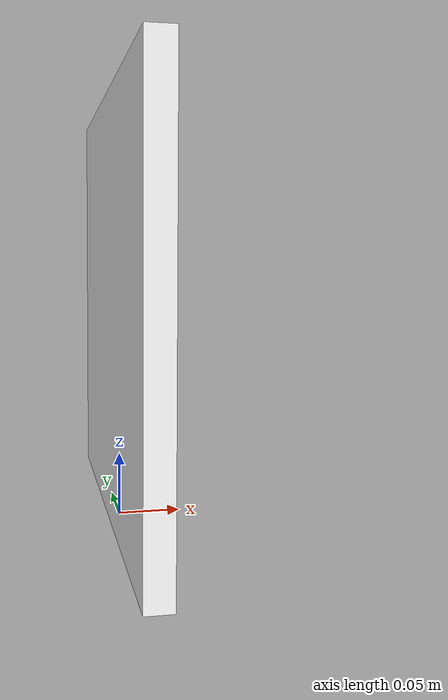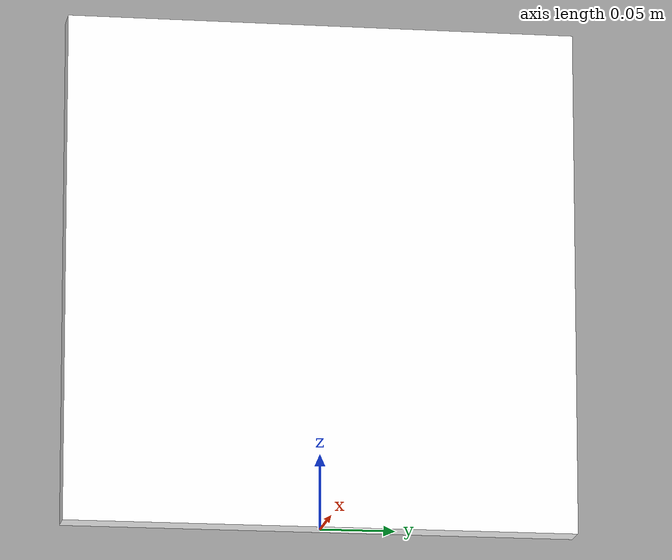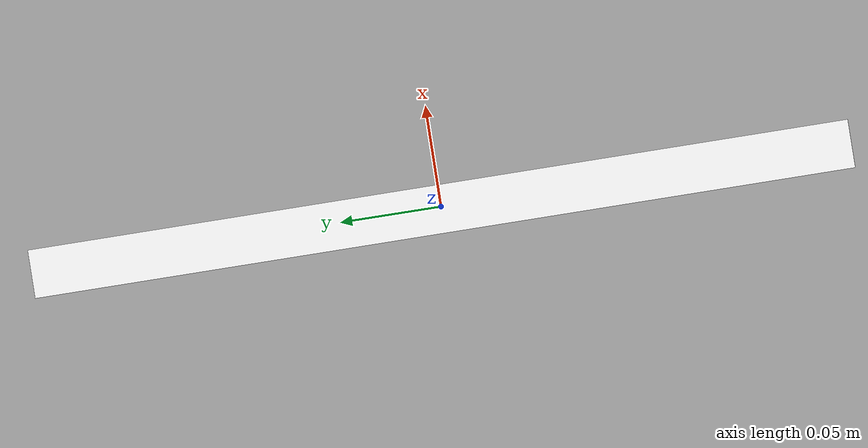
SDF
<?xml version='1.0'?>
<sdf version="1.7">
  <model name="coco_stop_sign">
    <!-- Origin at bottom-center (z=0 at contact). -->
    <static>true</static>
    <link name="link">
      <collision name="collision">
        <pose>0 0 0.17 0 0 0</pose>
        <geometry>
          <box>
            <size>0.02 0.34 0.34</size>
          </box>
        </geometry>
      </collision>
      <visual name="visual">
        <pose>0 0 0.17 0 0 0</pose>
        <geometry>
          <box>
            <size>0.02 0.34 0.34</size>
          </box>
        </geometry>
        <material>
          <diffuse>1 1 1 1</diffuse>
          <specular>0.1 0.1 0.1 1</specular>
          <double_sided>true</double_sided>
          <pbr>
            <metal>
              <albedo_map>materials/textures/stop_sign.png</albedo_map>
              <roughness>1.0</roughness>
              <metalness>0.0</metalness>
            </metal>
          </pbr>
        </material>
      </visual>
    </link>
  </model>
</sdf>
